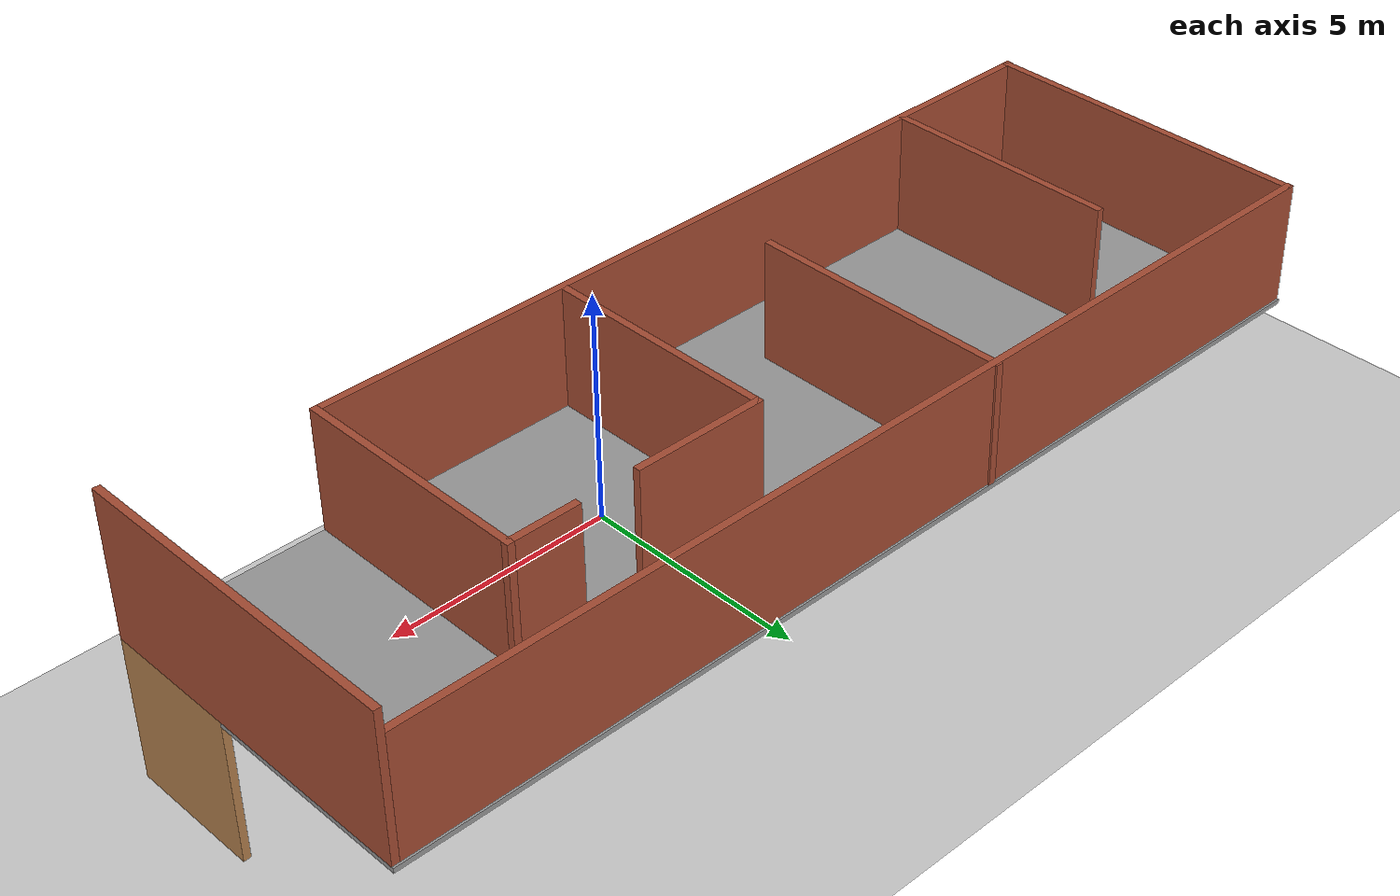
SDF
<sdf version="1.7">
 <world name="default">
  <model name="ground_plane">
   <static>1</static>
   <link name="link">
    <collision name="collision">
     <geometry><plane><normal>0 0 1</normal><size>100 100</size></plane></geometry>
     <surface>
      <contact><collide_bitmask>65535</collide_bitmask></contact>
      <friction><ode><mu>100</mu><mu2>50</mu2></ode></friction>
     </surface>
    </collision>
    <visual name="visual">
     <cast_shadows>0</cast_shadows>
     <geometry><plane><normal>0 0 1</normal><size>100 100</size></plane></geometry>
     <material>
      <script><uri>file://media/materials/scripts/gazebo.material</uri><name>Gazebo/Grey</name></script>
     </material>
    </visual>
   </link>
  </model>
  <model name="Untitled_0">
   <link name="Floor_6">
    <pose>0 0 2.90474 0 -0 0</pose>
    <visual name="Floor_6_Visual">
     <pose>0 0 0.05 0 -0 0</pose>
     <geometry><box><size>21.3395 7.03894 0.1</size></box></geometry>
     <material>
      <script><uri>file://media/materials/scripts/gazebo.material</uri><name>Gazebo/Grey</name></script>
      <ambient>1 1 1 1</ambient>
      <shader type="pixel"/>
     </material>
     <meta><layer>1</layer></meta>
    </visual>
    <collision name="Floor_6_Collision">
     <pose>0 0 0.05 0 -0 0</pose>
     <geometry><box><size>21.3395 7.03894 0.1</size></box></geometry>
     <surface>
      <friction>
       <ode><mu>1</mu><mu2>1</mu2><fdir1>0 0 0</fdir1><slip1>0</slip1><slip2>0</slip2></ode>
       <torsional>
        <coefficient>1</coefficient>
        <patch_radius>0</patch_radius>
        <surface_radius>0</surface_radius>
        <use_patch_radius>1</use_patch_radius>
        <ode><slip>0</slip></ode>
       </torsional>
      </friction>
      <bounce><restitution_coefficient>0</restitution_coefficient><threshold>1e+06</threshold></bounce>
      <contact>
       <collide_without_contact>0</collide_without_contact>
       <collide_without_contact_bitmask>1</collide_without_contact_bitmask>
       <collide_bitmask>1</collide_bitmask>
       <ode>
        <soft_cfm>0</soft_cfm>
        <soft_erp>0.2</soft_erp>
        <kp>1e+13</kp>
        <kd>1</kd>
        <max_vel>0.01</max_vel>
        <min_depth>0</min_depth>
       </ode>
       <bullet>
        <split_impulse>1</split_impulse>
        <split_impulse_penetration_threshold>-0.01</split_impulse_penetration_threshold>
        <soft_cfm>0</soft_cfm>
        <soft_erp>0.2</soft_erp>
        <kp>1e+13</kp>
        <kd>1</kd>
       </bullet>
      </contact>
     </surface>
    </collision>
   </link>
   <link name="Wall_53">
    <pose>10.5948 -0.019471 3 0 -0 1.5708</pose>
    <visual name="Wall_53_Visual">
     <pose>0 0 1.5 0 -0 0</pose>
     <geometry><box><size>7 0.15 3</size></box></geometry>
     <material>
      <script><uri>file://media/materials/scripts/gazebo.material</uri><name>Gazebo/Bricks</name></script>
      <ambient>1 1 1 1</ambient>
      <shader type="pixel"/>
     </material>
     <meta><layer>1</layer></meta>
    </visual>
    <collision name="Wall_53_Collision">
     <pose>0 0 1.5 0 -0 0</pose>
     <geometry><box><size>7 0.15 3</size></box></geometry>
     <surface>
      <friction>
       <ode><mu>1</mu><mu2>1</mu2><fdir1>0 0 0</fdir1><slip1>0</slip1><slip2>0</slip2></ode>
       <torsional>
        <coefficient>1</coefficient>
        <patch_radius>0</patch_radius>
        <surface_radius>0</surface_radius>
        <use_patch_radius>1</use_patch_radius>
        <ode><slip>0</slip></ode>
       </torsional>
      </friction>
      <bounce><restitution_coefficient>0</restitution_coefficient><threshold>1e+06</threshold></bounce>
      <contact>
       <collide_without_contact>0</collide_without_contact>
       <collide_without_contact_bitmask>1</collide_without_contact_bitmask>
       <collide_bitmask>1</collide_bitmask>
       <ode>
        <soft_cfm>0</soft_cfm>
        <soft_erp>0.2</soft_erp>
        <kp>1e+13</kp>
        <kd>1</kd>
        <max_vel>0.01</max_vel>
        <min_depth>0</min_depth>
       </ode>
       <bullet>
        <split_impulse>1</split_impulse>
        <split_impulse_penetration_threshold>-0.01</split_impulse_penetration_threshold>
        <soft_cfm>0</soft_cfm>
        <soft_erp>0.2</soft_erp>
        <kp>1e+13</kp>
        <kd>1</kd>
       </bullet>
      </contact>
     </surface>
    </collision>
   </link>
   <link name="Wall_54">
    <pose>0 3.40553 3 0 -0 3.14159</pose>
    <visual name="Wall_54_Visual">
     <pose>0 0 1.25 0 -0 0</pose>
     <geometry><box><size>21.3395 0.15 2.5</size></box></geometry>
     <material>
      <script><uri>file://media/materials/scripts/gazebo.material</uri><name>Gazebo/Bricks</name></script>
      <ambient>1 1 1 1</ambient>
      <shader type="pixel"/>
     </material>
     <meta><layer>1</layer></meta>
    </visual>
    <collision name="Wall_54_Collision">
     <pose>0 0 1.25 0 -0 0</pose>
     <geometry><box><size>21.3395 0.15 2.5</size></box></geometry>
     <surface>
      <friction>
       <ode><mu>1</mu><mu2>1</mu2><fdir1>0 0 0</fdir1><slip1>0</slip1><slip2>0</slip2></ode>
       <torsional>
        <coefficient>1</coefficient>
        <patch_radius>0</patch_radius>
        <surface_radius>0</surface_radius>
        <use_patch_radius>1</use_patch_radius>
        <ode><slip>0</slip></ode>
       </torsional>
      </friction>
      <bounce><restitution_coefficient>0</restitution_coefficient><threshold>1e+06</threshold></bounce>
      <contact>
       <collide_without_contact>0</collide_without_contact>
       <collide_without_contact_bitmask>1</collide_without_contact_bitmask>
       <collide_bitmask>1</collide_bitmask>
       <ode>
        <soft_cfm>0</soft_cfm>
        <soft_erp>0.2</soft_erp>
        <kp>1e+13</kp>
        <kd>1</kd>
        <max_vel>0.01</max_vel>
        <min_depth>0</min_depth>
       </ode>
       <bullet>
        <split_impulse>1</split_impulse>
        <split_impulse_penetration_threshold>-0.01</split_impulse_penetration_threshold>
        <soft_cfm>0</soft_cfm>
        <soft_erp>0.2</soft_erp>
        <kp>1e+13</kp>
        <kd>1</kd>
       </bullet>
      </contact>
     </surface>
    </collision>
   </link>
   <link name="Wall_55">
    <pose>-10.5773 -0.019471 3 0 0 -1.5708</pose>
    <visual name="Wall_55_Visual">
     <pose>0 0 1.25 0 -0 0</pose>
     <geometry><box><size>7 0.15 2.5</size></box></geometry>
     <material>
      <script><uri>file://media/materials/scripts/gazebo.material</uri><name>Gazebo/Bricks</name></script>
      <ambient>1 1 1 1</ambient>
      <shader type="pixel"/>
     </material>
     <meta><layer>1</layer></meta>
    </visual>
    <collision name="Wall_55_Collision">
     <pose>0 0 1.25 0 -0 0</pose>
     <geometry><box><size>7 0.15 2.5</size></box></geometry>
     <surface>
      <friction>
       <ode><mu>1</mu><mu2>1</mu2><fdir1>0 0 0</fdir1><slip1>0</slip1><slip2>0</slip2></ode>
       <torsional>
        <coefficient>1</coefficient>
        <patch_radius>0</patch_radius>
        <surface_radius>0</surface_radius>
        <use_patch_radius>1</use_patch_radius>
        <ode><slip>0</slip></ode>
       </torsional>
      </friction>
      <bounce><restitution_coefficient>0</restitution_coefficient><threshold>1e+06</threshold></bounce>
      <contact>
       <collide_without_contact>0</collide_without_contact>
       <collide_without_contact_bitmask>1</collide_without_contact_bitmask>
       <collide_bitmask>1</collide_bitmask>
       <ode>
        <soft_cfm>0</soft_cfm>
        <soft_erp>0.2</soft_erp>
        <kp>1e+13</kp>
        <kd>1</kd>
        <max_vel>0.01</max_vel>
        <min_depth>0</min_depth>
       </ode>
       <bullet>
        <split_impulse>1</split_impulse>
        <split_impulse_penetration_threshold>-0.01</split_impulse_penetration_threshold>
        <soft_cfm>0</soft_cfm>
        <soft_erp>0.2</soft_erp>
        <kp>1e+13</kp>
        <kd>1</kd>
       </bullet>
      </contact>
     </surface>
    </collision>
   </link>
   <link name="Wall_56">
    <pose>-2 -3.44447 3 0 -0 0</pose>
    <visual name="Wall_56_Visual">
     <pose>0 0 1.25 0 -0 0</pose>
     <geometry><box><size>17.3395 0.15 2.5</size></box></geometry>
     <material>
      <script><uri>file://media/materials/scripts/gazebo.material</uri><name>Gazebo/Bricks</name></script>
      <ambient>1 1 1 1</ambient>
      <shader type="pixel"/>
     </material>
     <meta><layer>1</layer></meta>
    </visual>
    <collision name="Wall_56_Collision">
     <pose>0 0 1.25 0 -0 0</pose>
     <geometry><box><size>17.3395 0.15 2.5</size></box></geometry>
     <surface>
      <friction>
       <ode><mu>1</mu><mu2>1</mu2><fdir1>0 0 0</fdir1><slip1>0</slip1><slip2>0</slip2></ode>
       <torsional>
        <coefficient>1</coefficient>
        <patch_radius>0</patch_radius>
        <surface_radius>0</surface_radius>
        <use_patch_radius>1</use_patch_radius>
        <ode><slip>0</slip></ode>
       </torsional>
      </friction>
      <bounce><restitution_coefficient>0</restitution_coefficient><threshold>1e+06</threshold></bounce>
      <contact>
       <collide_without_contact>0</collide_without_contact>
       <collide_without_contact_bitmask>1</collide_without_contact_bitmask>
       <collide_bitmask>1</collide_bitmask>
       <ode>
        <soft_cfm>0</soft_cfm>
        <soft_erp>0.2</soft_erp>
        <kp>1e+13</kp>
        <kd>1</kd>
        <max_vel>0.01</max_vel>
        <min_depth>0</min_depth>
       </ode>
       <bullet>
        <split_impulse>1</split_impulse>
        <split_impulse_penetration_threshold>-0.01</split_impulse_penetration_threshold>
        <soft_cfm>0</soft_cfm>
        <soft_erp>0.2</soft_erp>
        <kp>1e+13</kp>
        <kd>1</kd>
       </bullet>
      </contact>
     </surface>
    </collision>
   </link>
   <link name="Wall_58">
    <pose>6.59476 -1.01947 3 0 -0 1.5708</pose>
    <visual name="Wall_58_Visual">
     <pose>0 0 1.25 0 -0 0</pose>
     <geometry><box><size>5 0.15 2.5</size></box></geometry>
     <material>
      <script><uri>file://media/materials/scripts/gazebo.material</uri><name>Gazebo/Bricks</name></script>
      <ambient>1 1 1 1</ambient>
      <shader type="pixel"/>
     </material>
     <meta><layer>1</layer></meta>
    </visual>
    <collision name="Wall_58_Collision">
     <pose>0 0 1.25 0 -0 0</pose>
     <geometry><box><size>5 0.15 2.5</size></box></geometry>
     <surface>
      <friction>
       <ode><mu>1</mu><mu2>1</mu2><fdir1>0 0 0</fdir1><slip1>0</slip1><slip2>0</slip2></ode>
       <torsional>
        <coefficient>1</coefficient>
        <patch_radius>0</patch_radius>
        <surface_radius>0</surface_radius>
        <use_patch_radius>1</use_patch_radius>
        <ode><slip>0</slip></ode>
       </torsional>
      </friction>
      <bounce><restitution_coefficient>0</restitution_coefficient><threshold>1e+06</threshold></bounce>
      <contact>
       <collide_without_contact>0</collide_without_contact>
       <collide_without_contact_bitmask>1</collide_without_contact_bitmask>
       <collide_bitmask>1</collide_bitmask>
       <ode>
        <soft_cfm>0</soft_cfm>
        <soft_erp>0.2</soft_erp>
        <kp>1e+13</kp>
        <kd>1</kd>
        <max_vel>0.01</max_vel>
        <min_depth>0</min_depth>
       </ode>
       <bullet>
        <split_impulse>1</split_impulse>
        <split_impulse_penetration_threshold>-0.01</split_impulse_penetration_threshold>
        <soft_cfm>0</soft_cfm>
        <soft_erp>0.2</soft_erp>
        <kp>1e+13</kp>
        <kd>1</kd>
       </bullet>
      </contact>
     </surface>
    </collision>
   </link>
   <link name="Wall_59">
    <pose>5.91976 1.40553 3 0 -0 3.14159</pose>
    <visual name="Wall_59_Visual">
     <pose>0 0 1.25 0 -0 0</pose>
     <geometry><box><size>1.5 0.15 2.5</size></box></geometry>
     <material>
      <script><uri>file://media/materials/scripts/gazebo.material</uri><name>Gazebo/Bricks</name></script>
      <ambient>1 1 1 1</ambient>
      <shader type="pixel"/>
     </material>
     <meta><layer>1</layer></meta>
    </visual>
    <collision name="Wall_59_Collision">
     <pose>0 0 1.25 0 -0 0</pose>
     <geometry><box><size>1.5 0.15 2.5</size></box></geometry>
     <surface>
      <friction>
       <ode><mu>1</mu><mu2>1</mu2><fdir1>0 0 0</fdir1><slip1>0</slip1><slip2>0</slip2></ode>
       <torsional>
        <coefficient>1</coefficient>
        <patch_radius>0</patch_radius>
        <surface_radius>0</surface_radius>
        <use_patch_radius>1</use_patch_radius>
        <ode><slip>0</slip></ode>
       </torsional>
      </friction>
      <bounce><restitution_coefficient>0</restitution_coefficient><threshold>1e+06</threshold></bounce>
      <contact>
       <collide_without_contact>0</collide_without_contact>
       <collide_without_contact_bitmask>1</collide_without_contact_bitmask>
       <collide_bitmask>1</collide_bitmask>
       <ode>
        <soft_cfm>0</soft_cfm>
        <soft_erp>0.2</soft_erp>
        <kp>1e+13</kp>
        <kd>1</kd>
        <max_vel>0.01</max_vel>
        <min_depth>0</min_depth>
       </ode>
       <bullet>
        <split_impulse>1</split_impulse>
        <split_impulse_penetration_threshold>-0.01</split_impulse_penetration_threshold>
        <soft_cfm>0</soft_cfm>
        <soft_erp>0.2</soft_erp>
        <kp>1e+13</kp>
        <kd>1</kd>
       </bullet>
      </contact>
     </surface>
    </collision>
   </link>
   <link name="Wall_62">
    <pose>2.60146 1.41562 3 0 -0 3.14159</pose>
    <visual name="Wall_62_Visual">
     <pose>0 0 1.25 0 -0 0</pose>
     <geometry><box><size>2.75 0.15 2.5</size></box></geometry>
     <material>
      <script><uri>file://media/materials/scripts/gazebo.material</uri><name>Gazebo/Bricks</name></script>
      <ambient>1 1 1 1</ambient>
      <shader type="pixel"/>
     </material>
     <meta><layer>1</layer></meta>
    </visual>
    <collision name="Wall_62_Collision">
     <pose>0 0 1.25 0 -0 0</pose>
     <geometry><box><size>2.75 0.15 2.5</size></box></geometry>
     <surface>
      <friction>
       <ode><mu>1</mu><mu2>1</mu2><fdir1>0 0 0</fdir1><slip1>0</slip1><slip2>0</slip2></ode>
       <torsional>
        <coefficient>1</coefficient>
        <patch_radius>0</patch_radius>
        <surface_radius>0</surface_radius>
        <use_patch_radius>1</use_patch_radius>
        <ode><slip>0</slip></ode>
       </torsional>
      </friction>
      <bounce><restitution_coefficient>0</restitution_coefficient><threshold>1e+06</threshold></bounce>
      <contact>
       <collide_without_contact>0</collide_without_contact>
       <collide_without_contact_bitmask>1</collide_without_contact_bitmask>
       <collide_bitmask>1</collide_bitmask>
       <ode>
        <soft_cfm>0</soft_cfm>
        <soft_erp>0.2</soft_erp>
        <kp>1e+13</kp>
        <kd>1</kd>
        <max_vel>0.01</max_vel>
        <min_depth>0</min_depth>
       </ode>
       <bullet>
        <split_impulse>1</split_impulse>
        <split_impulse_penetration_threshold>-0.01</split_impulse_penetration_threshold>
        <soft_cfm>0</soft_cfm>
        <soft_erp>0.2</soft_erp>
        <kp>1e+13</kp>
        <kd>1</kd>
       </bullet>
      </contact>
     </surface>
    </collision>
   </link>
   <link name="Wall_63">
    <pose>1.30146 -1.00938 3 0 0 -1.5708</pose>
    <visual name="Wall_63_Visual">
     <pose>0 0 1.25 0 -0 0</pose>
     <geometry><box><size>5 0.15 2.5</size></box></geometry>
     <material>
      <script><uri>file://media/materials/scripts/gazebo.material</uri><name>Gazebo/Bricks</name></script>
      <ambient>1 1 1 1</ambient>
      <shader type="pixel"/>
     </material>
     <meta><layer>1</layer></meta>
    </visual>
    <collision name="Wall_63_Collision">
     <pose>0 0 1.25 0 -0 0</pose>
     <geometry><box><size>5 0.15 2.5</size></box></geometry>
     <surface>
      <friction>
       <ode><mu>1</mu><mu2>1</mu2><fdir1>0 0 0</fdir1><slip1>0</slip1><slip2>0</slip2></ode>
       <torsional>
        <coefficient>1</coefficient>
        <patch_radius>0</patch_radius>
        <surface_radius>0</surface_radius>
        <use_patch_radius>1</use_patch_radius>
        <ode><slip>0</slip></ode>
       </torsional>
      </friction>
      <bounce><restitution_coefficient>0</restitution_coefficient><threshold>1e+06</threshold></bounce>
      <contact>
       <collide_without_contact>0</collide_without_contact>
       <collide_without_contact_bitmask>1</collide_without_contact_bitmask>
       <collide_bitmask>1</collide_bitmask>
       <ode>
        <soft_cfm>0</soft_cfm>
        <soft_erp>0.2</soft_erp>
        <kp>1e+13</kp>
        <kd>1</kd>
        <max_vel>0.01</max_vel>
        <min_depth>0</min_depth>
       </ode>
       <bullet>
        <split_impulse>1</split_impulse>
        <split_impulse_penetration_threshold>-0.01</split_impulse_penetration_threshold>
        <soft_cfm>0</soft_cfm>
        <soft_erp>0.2</soft_erp>
        <kp>1e+13</kp>
        <kd>1</kd>
       </bullet>
      </contact>
     </surface>
    </collision>
   </link>
   <link name="Wall_65">
    <pose>-2.30751 0.769472 3 0 0 -1.5708</pose>
    <visual name="Wall_65_Visual">
     <pose>0 0 1.25 0 -0 0</pose>
     <geometry><box><size>5.5 0.15 2.5</size></box></geometry>
     <material>
      <script><uri>file://media/materials/scripts/gazebo.material</uri><name>Gazebo/Bricks</name></script>
      <ambient>1 1 1 1</ambient>
      <shader type="pixel"/>
     </material>
     <meta><layer>1</layer></meta>
    </visual>
    <collision name="Wall_65_Collision">
     <pose>0 0 1.25 0 -0 0</pose>
     <geometry><box><size>5.5 0.15 2.5</size></box></geometry>
     <surface>
      <friction>
       <ode><mu>1</mu><mu2>1</mu2><fdir1>0 0 0</fdir1><slip1>0</slip1><slip2>0</slip2></ode>
       <torsional>
        <coefficient>1</coefficient>
        <patch_radius>0</patch_radius>
        <surface_radius>0</surface_radius>
        <use_patch_radius>1</use_patch_radius>
        <ode><slip>0</slip></ode>
       </torsional>
      </friction>
      <bounce><restitution_coefficient>0</restitution_coefficient><threshold>1e+06</threshold></bounce>
      <contact>
       <collide_without_contact>0</collide_without_contact>
       <collide_without_contact_bitmask>1</collide_without_contact_bitmask>
       <collide_bitmask>1</collide_bitmask>
       <ode>
        <soft_cfm>0</soft_cfm>
        <soft_erp>0.2</soft_erp>
        <kp>1e+13</kp>
        <kd>1</kd>
        <max_vel>0.01</max_vel>
        <min_depth>0</min_depth>
       </ode>
       <bullet>
        <split_impulse>1</split_impulse>
        <split_impulse_penetration_threshold>-0.01</split_impulse_penetration_threshold>
        <soft_cfm>0</soft_cfm>
        <soft_erp>0.2</soft_erp>
        <kp>1e+13</kp>
        <kd>1</kd>
       </bullet>
      </contact>
     </surface>
    </collision>
   </link>
   <link name="Wall_67">
    <pose>-7.4321 -0.986633 3 0 -0 1.5708</pose>
    <visual name="Wall_67_Visual">
     <pose>0 0 1.25 0 -0 0</pose>
     <geometry><box><size>5 0.15 2.5</size></box></geometry>
     <material>
      <script><uri>file://media/materials/scripts/gazebo.material</uri><name>Gazebo/Bricks</name></script>
      <ambient>1 1 1 1</ambient>
      <shader type="pixel"/>
     </material>
     <meta><layer>1</layer></meta>
    </visual>
    <collision name="Wall_67_Collision">
     <pose>0 0 1.25 0 -0 0</pose>
     <geometry><box><size>5 0.15 2.5</size></box></geometry>
     <surface>
      <friction>
       <ode><mu>1</mu><mu2>1</mu2><fdir1>0 0 0</fdir1><slip1>0</slip1><slip2>0</slip2></ode>
       <torsional>
        <coefficient>1</coefficient>
        <patch_radius>0</patch_radius>
        <surface_radius>0</surface_radius>
        <use_patch_radius>1</use_patch_radius>
        <ode><slip>0</slip></ode>
       </torsional>
      </friction>
      <bounce><restitution_coefficient>0</restitution_coefficient><threshold>1e+06</threshold></bounce>
      <contact>
       <collide_without_contact>0</collide_without_contact>
       <collide_without_contact_bitmask>1</collide_without_contact_bitmask>
       <collide_bitmask>1</collide_bitmask>
       <ode>
        <soft_cfm>0</soft_cfm>
        <soft_erp>0.2</soft_erp>
        <kp>1e+13</kp>
        <kd>1</kd>
        <max_vel>0.01</max_vel>
        <min_depth>0</min_depth>
       </ode>
       <bullet>
        <split_impulse>1</split_impulse>
        <split_impulse_penetration_threshold>-0.01</split_impulse_penetration_threshold>
        <soft_cfm>0</soft_cfm>
        <soft_erp>0.2</soft_erp>
        <kp>1e+13</kp>
        <kd>1</kd>
       </bullet>
      </contact>
     </surface>
    </collision>
   </link>
   <link name="Wall_8">
    <pose>10.5948 -2.14447 0 0 -0 1.5708</pose>
    <visual name="Wall_8_Visual">
     <pose>0 0 1.5 0 -0 0</pose>
     <geometry><box><size>2.75 0.15 3</size></box></geometry>
     <material>
      <script><uri>file://media/materials/scripts/gazebo.material</uri><name>Gazebo/Wood</name></script>
      <ambient>1 1 1 1</ambient>
      <shader type="pixel"/>
     </material>
     <meta><layer>0</layer></meta>
    </visual>
    <collision name="Wall_8_Collision">
     <pose>0 0 1.5 0 -0 0</pose>
     <geometry><box><size>2.75 0.15 3</size></box></geometry>
     <surface>
      <friction>
       <ode><mu>1</mu><mu2>1</mu2><fdir1>0 0 0</fdir1><slip1>0</slip1><slip2>0</slip2></ode>
       <torsional>
        <coefficient>1</coefficient>
        <patch_radius>0</patch_radius>
        <surface_radius>0</surface_radius>
        <use_patch_radius>1</use_patch_radius>
        <ode><slip>0</slip></ode>
       </torsional>
      </friction>
      <bounce><restitution_coefficient>0</restitution_coefficient><threshold>1e+06</threshold></bounce>
      <contact>
       <collide_without_contact>0</collide_without_contact>
       <collide_without_contact_bitmask>1</collide_without_contact_bitmask>
       <collide_bitmask>1</collide_bitmask>
       <ode>
        <soft_cfm>0</soft_cfm>
        <soft_erp>0.2</soft_erp>
        <kp>1e+13</kp>
        <kd>1</kd>
        <max_vel>0.01</max_vel>
        <min_depth>0</min_depth>
       </ode>
       <bullet>
        <split_impulse>1</split_impulse>
        <split_impulse_penetration_threshold>-0.01</split_impulse_penetration_threshold>
        <soft_cfm>0</soft_cfm>
        <soft_erp>0.2</soft_erp>
        <kp>1e+13</kp>
        <kd>1</kd>
       </bullet>
      </contact>
     </surface>
    </collision>
   </link>
   <static>1</static>
   <pose>-0.613694 3.46136 0 0 -0 0</pose>
  </model>
 </world>
</sdf>
